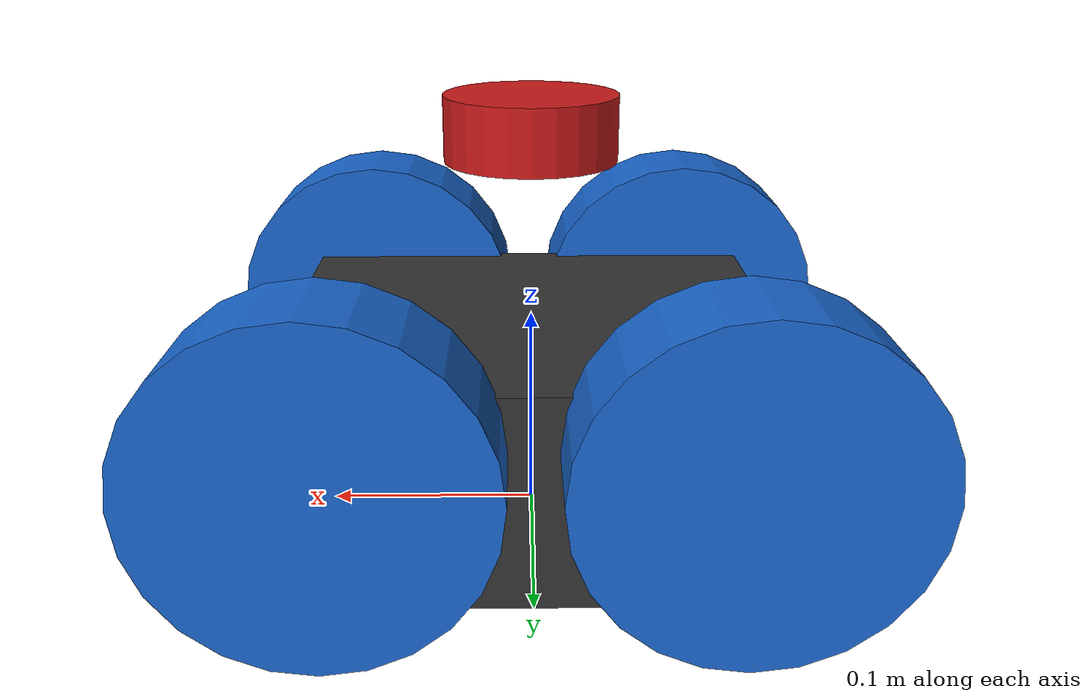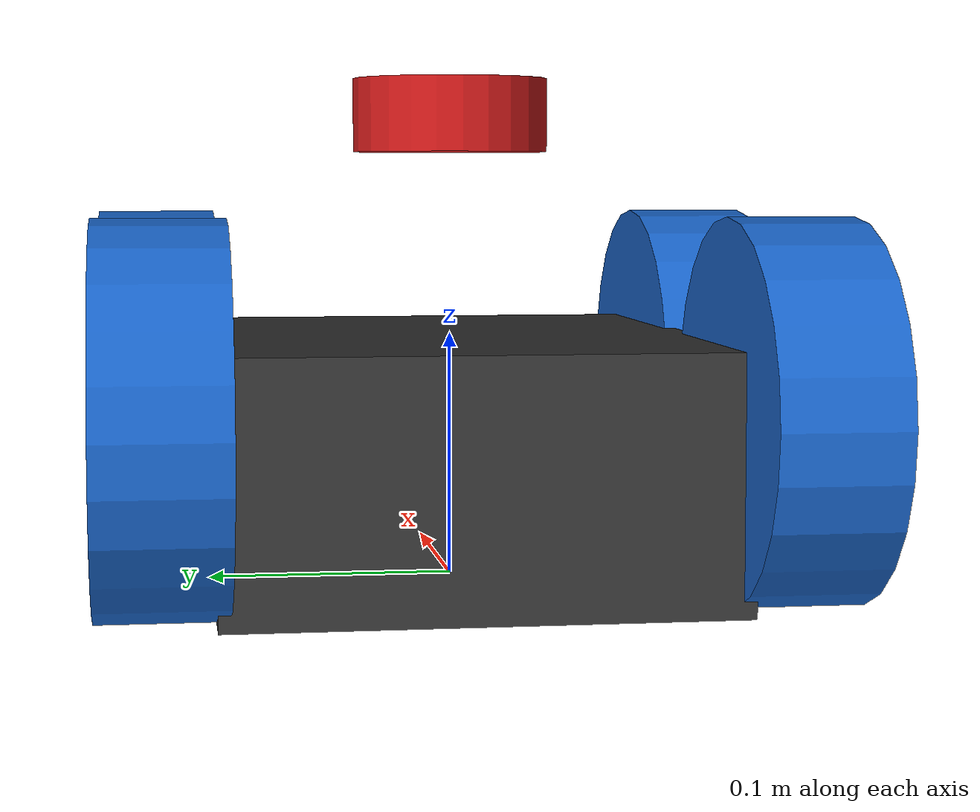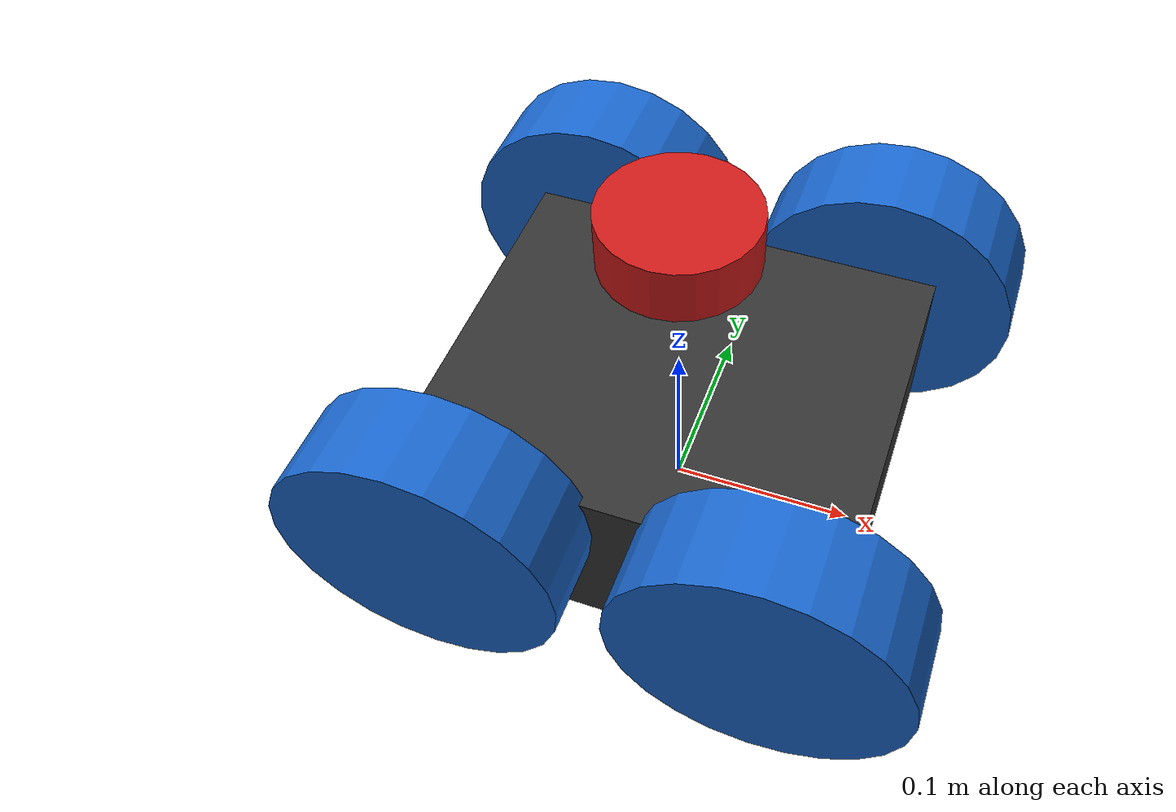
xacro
<?xml version="1.0"?>
<robot name="guardian" xmlns:xacro="http://www.ros.org/wiki/xacro">

  <!-- ── Materials ─────────────────────────────────────────────────────────── -->
  <material name="dark_grey"><color rgba="0.2 0.2 0.2 1.0"/></material>
  <material name="blue">    <color rgba="0.1 0.4 0.8 1.0"/></material>
  <material name="red">     <color rgba="0.8 0.1 0.1 1.0"/></material>

  <!-- ── Chassis ───────────────────────────────────────────────────────────── -->
  <!-- base_link origin at ground level; chassis box centred at z=0.05 (half height) -->
  <link name="base_link">
    <visual>
      <origin xyz="0 0 0.05" rpy="0 0 0"/>
      <geometry><box size="0.2312 0.200 0.100"/></geometry>
      <material name="dark_grey"/>
    </visual>
    <collision>
      <origin xyz="0 0 0.05" rpy="0 0 0"/>
      <geometry><box size="0.2312 0.200 0.100"/></geometry>
    </collision>
    <inertial>
      <origin xyz="0 0 0.05" rpy="0 0 0"/>
      <mass value="4.0"/>
      <inertia ixx="0.01517" ixy="0" ixz="0"
               iyy="0.02250" iyz="0"
               izz="0.03118"/>
    </inertial>
  </link>

  <!-- ── Wheels ────────────────────────────────────────────────────────────── -->
  <!-- Wheel axles at z=0.0748 (wheel_radius) so wheels rest on z=0 ground    -->
  <xacro:macro name="wheel" params="name x y">
    <link name="${name}_wheel">
      <visual>
        <origin xyz="0 0 0" rpy="1.5708 0 0"/>
        <geometry><cylinder radius="0.0748" length="0.05"/></geometry>
        <material name="blue"/>
      </visual>
      <collision>
        <origin xyz="0 0 0" rpy="1.5708 0 0"/>
        <geometry><cylinder radius="0.0748" length="0.05"/></geometry>
      </collision>
      <inertial>
        <mass value="0.5"/>
        <!-- solid cylinder: ixx=iyy=m(3r²+h²)/12, izz=mr²/2 -->
        <inertia ixx="0.001561" ixy="0" ixz="0"
                 iyy="0.001561" iyz="0"
                 izz="0.001401"/>
      </inertial>
    </link>
    <joint name="${name}_wheel_joint" type="continuous">
      <parent link="base_link"/>
      <child  link="${name}_wheel"/>
      <origin xyz="${x} ${y} 0.0748" rpy="0 0 0"/>
      <axis xyz="0 1 0"/>
      <dynamics damping="0.01"/>
    </joint>
    <gazebo reference="${name}_wheel">
      <mu1>1.0</mu1>
      <mu2>1.0</mu2>
      <material>Gazebo/Blue</material>
    </gazebo>
  </xacro:macro>

  <xacro:wheel name="front_left"  x=" 0.0856" y=" 0.120"/>
  <xacro:wheel name="front_right" x=" 0.0856" y="-0.120"/>
  <xacro:wheel name="rear_left"   x="-0.0856" y=" 0.120"/>
  <xacro:wheel name="rear_right"  x="-0.0856" y="-0.120"/>

  <!-- ── Lidar link ────────────────────────────────────────────────────────── -->
  <link name="laser">
    <visual>
      <origin xyz="0 0 0.015" rpy="0 0 0"/>
      <geometry><cylinder radius="0.04" length="0.03"/></geometry>
      <material name="red"/>
    </visual>
    <collision>
      <origin xyz="0 0 0.015" rpy="0 0 0"/>
      <geometry><cylinder radius="0.04" length="0.03"/></geometry>
    </collision>
    <inertial>
      <mass value="0.1"/>
      <inertia ixx="0.0001" ixy="0" ixz="0"
               iyy="0.0001" iyz="0"
               izz="0.0001"/>
    </inertial>
  </link>
  <joint name="laser_joint" type="fixed">
    <parent link="base_link"/>
    <child  link="laser"/>
    <origin xyz="0.0 0.0 0.175" rpy="0 0 0"/>
  </joint>

  <!-- ── Gazebo: chassis colour ────────────────────────────────────────────── -->
  <gazebo reference="base_link">
    <material>Gazebo/DarkGrey</material>
  </gazebo>

  <!-- ── Gazebo: GPU Lidar sensor ──────────────────────────────────────────── -->
  <gazebo reference="laser">
    <sensor name="gpu_lidar" type="gpu_lidar">
      <pose>0 0 0.015 0 0 0</pose>
      <topic>/scan</topic>
      <gz_frame_id>laser</gz_frame_id>
      <update_rate>5</update_rate>
      <lidar>
        <scan>
          <horizontal>
            <samples>500</samples>
            <resolution>1</resolution>
            <min_angle>-3.14159265</min_angle>
            <max_angle>3.14159265</max_angle>
          </horizontal>
        </scan>
        <range>
          <min>0.1</min>
          <max>20.0</max>
          <resolution>0.01</resolution>
        </range>
        <noise>
          <type>gaussian</type>
          <mean>0.0</mean>
          <stddev>0.01</stddev>
        </noise>
      </lidar>
      <always_on>true</always_on>
      <visualize>true</visualize>
    </sensor>
  </gazebo>

  <!-- ── Gazebo: DiffDrive plugin ──────────────────────────────────────────── -->
  <!-- Groups FL+BL as left, FR+BR as right — approximates mecanum for SLAM   -->
  <gazebo>
    <plugin filename="gz-sim-diff-drive-system"
            name="gz::sim::systems::DiffDrive">
      <left_joint>front_left_wheel_joint</left_joint>
      <left_joint>rear_left_wheel_joint</left_joint>
      <right_joint>front_right_wheel_joint</right_joint>
      <right_joint>rear_right_wheel_joint</right_joint>
      <wheel_separation>0.240</wheel_separation>
      <wheel_radius>0.0748</wheel_radius>
      <odom_publish_frequency>50</odom_publish_frequency>
      <topic>/cmd_vel</topic>
      <odom_topic>/odom</odom_topic>
      <frame_id>odom</frame_id>
      <child_frame_id>base_link</child_frame_id>
      <tf_topic>/tf</tf_topic>
    </plugin>
  </gazebo>

  <!-- ── Gazebo: Joint state publisher ─────────────────────────────────────── -->
  <gazebo>
    <plugin filename="gz-sim-joint-state-publisher-system"
            name="gz::sim::systems::JointStatePublisher">
      <topic>/joint_states</topic>
    </plugin>
  </gazebo>

</robot>
